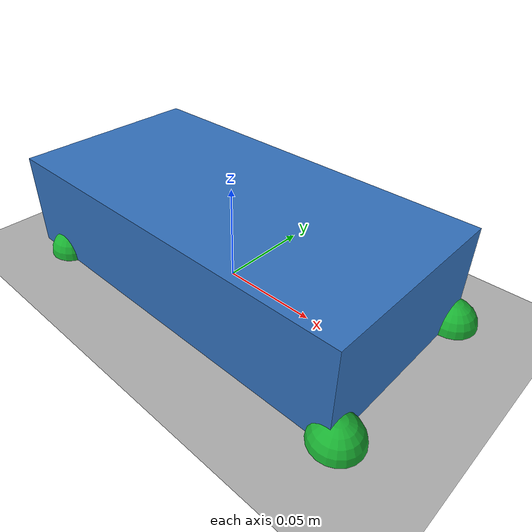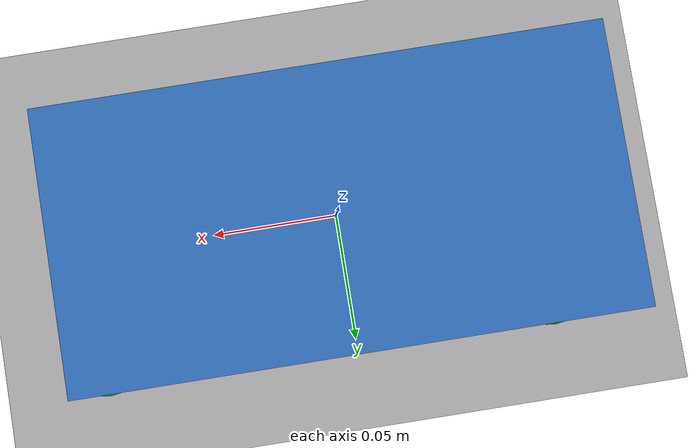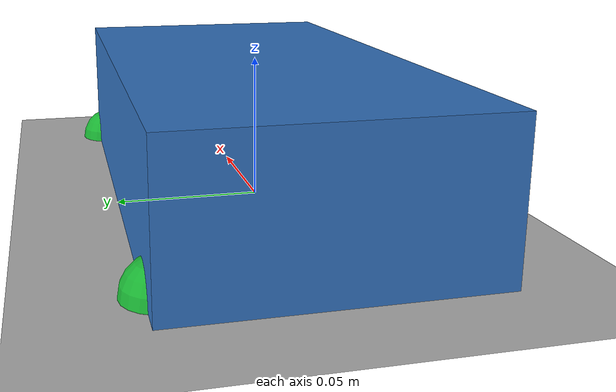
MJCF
<mujoco model="single_foot_bench">
  <compiler angle="radian" autolimits="true"/>
  <option timestep="0.002" gravity="0 0 -9.81" integrator="implicitfast"/>
  <visual>
    <headlight ambient="0.4 0.4 0.4" diffuse="0.8 0.8 0.8" specular="0.2 0.2 0.2"/>
  </visual>
  <default>
    <geom contype="1" conaffinity="1" friction="0.5 0.005 0.0001" solref="0.01 1" solimp="0.95 0.99 0.001"/>
  </default>
  <worldbody>
    <light name="top" pos="0 0 1"/>
    <geom name="ground" type="plane" pos="0 0 0" size="2 2 0.01" rgba="0.7 0.7 0.7 1"/>
    <body name="foot" pos="0 0 0.025" quat="1 0 0 0">
      <freejoint name="foot_freejoint"/>
      <geom name="foot_visual" type="box" pos="0 0 0" size="0.10 0.05 0.025" mass="4.0" rgba="0.2 0.45 0.75 1"/>
      <site name="foot_imu" pos="0 0 0" size="0.005" rgba="0.9 0.2 0.1 1"/>
      <geom name="contact_0" type="sphere" pos="0.10 0.045 -0.025" size="0.012" mass="0" rgba="0.1 0.7 0.2 1"/>
      <geom name="contact_1" type="sphere" pos="0.10 -0.045 -0.025" size="0.012" mass="0" rgba="0.1 0.7 0.2 1"/>
      <geom name="contact_2" type="sphere" pos="-0.08 0.045 -0.025" size="0.012" mass="0" rgba="0.1 0.7 0.2 1"/>
      <geom name="contact_3" type="sphere" pos="-0.08 -0.045 -0.025" size="0.012" mass="0" rgba="0.1 0.7 0.2 1"/>
    </body>
  </worldbody>
</mujoco>
